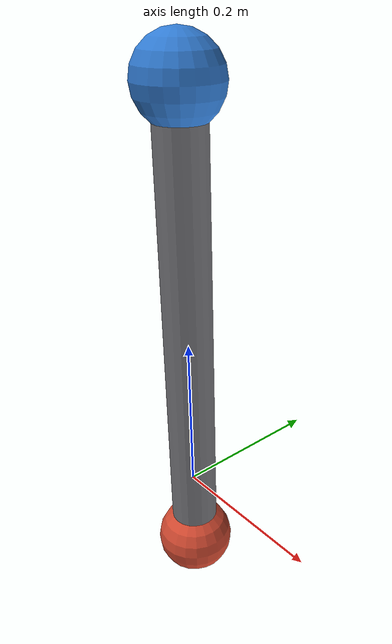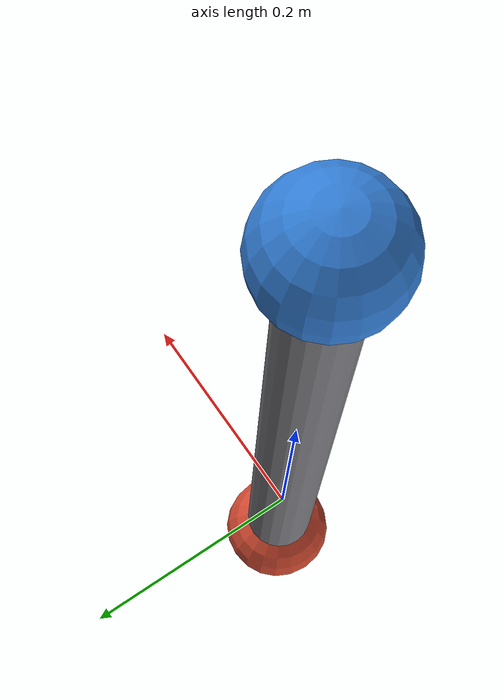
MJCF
<mujoco model="subtree-angmom">
    <compiler angle="radian"/>
    <option gravity="0 0 0" timestep="0.001"/>

    <default>
        <geom contype="0" conaffinity="0"/>
    </default>

    <worldbody>
        <body name="rod" pos="0 0 0.5">
            <joint name="hinge" type="hinge" axis="0 1 0" damping="0"/>
            <geom name="shaft" type="capsule" size="0.03"
                  fromto="0 0 0 0 0 -0.6" mass="1.0" rgba="0.48 0.48 0.50 1"/>
            <geom name="tip_a" type="sphere" size="0.05"
                  pos="0 0 0" rgba="0.2 0.5 0.85 1" mass="0.001"/>
            <geom name="tip_b" type="sphere" size="0.05"
                  pos="0 0 -0.6" rgba="0.85 0.3 0.2 1" mass="0.001"/>
        </body>
    </worldbody>

    <sensor>
        <subtreeangmom name="sub_angmom" body="rod"/>
    </sensor>
</mujoco>
